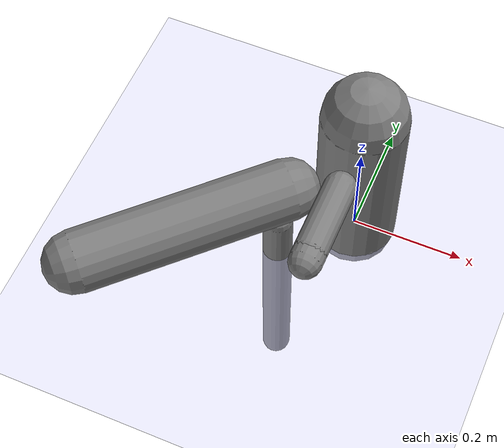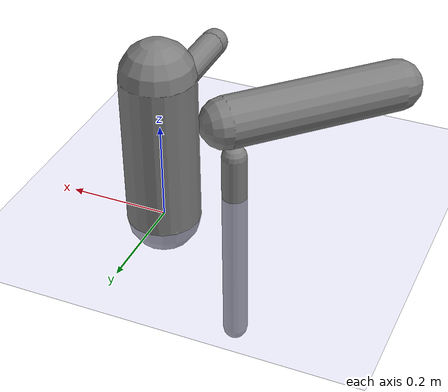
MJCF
<?xml version='1.0' encoding='UTF-8'?>
<mujoco model="robot_model">
  <worldbody>
    <light name="light" pos="0 -3 10" dir="0 0.5 -1" diffuse=".8 .8 .8" specular="0.1 0.1 0.1"/>
    <geom name="floor" type="plane" size="10.0 10.0 0.1" pos="0 0 0" rgba="0.8 0.8 1 1" contype="2" conaffinity="1"/>
    <body name="limb0" pos="0 0 0">
      <geom name="limb0_geom" type="capsule" fromto="0 0 0 0 0 0.31080676714656147" size="0.07363139861993152" density="594.957624755026" contype="1" conaffinity="2"/>
      <site type="sphere" size="0.01" name="limb0_site0" pos="-0.09291088760951131 -0.09291088760951129 0.17893832194665135" quat="0.7071067811865476 0.4999999999999999 -0.5000000000000001 0.0"/>
      <site type="sphere" size="0.01" name="limb0_site1" pos="-1.9342371547152392e-17 -0.10529496646499385 0.2541407230733447" quat="0.7071067811865476 0.7071067811865475 -1.2989340843532398e-16 0.0"/>
      <site type="sphere" size="0.01" name="limb0_site2" pos="-1.9344046511339248e-17 -0.10530408454534171 0.2552427865298218" quat="0.7071067811865476 0.7071067811865475 -1.2989340843532398e-16 0.0"/>
      <freejoint name="limb0_root"/>
      <body name="limb1" pos="-0.09291088760951131 -0.09291088760951129 0.17893832194665135" quat="0.7071067811865476 0.4999999999999999 -0.5000000000000001 0.0">
        <geom name="limb1_geom" type="capsule" fromto="0 0 0 0 0 0.3711195112383836" size="0.053764438729561694" density="695.0572133567601" contype="1" conaffinity="2"/>
        <site type="sphere" size="0.01" name="limb1_site0" pos="-0.05964851918874987 -0.059648519188749846 0.017912304026733158" quat="0.7071067811865476 0.4999999999999999 -0.5000000000000001 0.0"/>
        <body name="limb2" pos="-0.05964851918874987 -0.059648519188749846 0.017912304026733158" quat="0.7071067811865476 0.4999999999999999 -0.5000000000000001 0.0">
          <geom name="limb2_geom" type="capsule" fromto="0 0 0 0 0 0.45077315733160433" size="0.02659130608264014" density="1115.7827975094947" contype="1" conaffinity="2"/>
          <joint name="joint_limb1_limb2_0" type="hinge" axis="1 0 0" range="-88.31191170218361 88.31191170218361" damping="5.0"/>
        </body>
        <joint name="joint_limb0_limb1_0" type="hinge" axis="0 1 0" range="-113.6566083474294 113.6566083474294" damping="5.0"/>
      </body>
      <body name="limb3" pos="-1.9342371547152392e-17 -0.10529496646499385 0.2541407230733447" quat="0.7071067811865476 0.7071067811865475 -1.2989340843532398e-16 0.0">
        <geom name="limb3_geom" type="capsule" fromto="0 0 0 0 0 0.14705663010487965" size="0.02766356784506233" density="804.7781072521468" contype="1" conaffinity="2"/>
        <joint name="joint_limb0_limb3_0" type="hinge" axis="0 0 1" range="-27.51326948727836 27.51326948727836" damping="5.0"/>
      </body>
      <body name="limb4" pos="-1.9344046511339248e-17 -0.10530408454534171 0.2552427865298218" quat="0.7071067811865476 0.7071067811865475 -1.2989340843532398e-16 0.0">
        <geom name="limb4_geom" type="capsule" fromto="0 0 0 0 0 0.12696948819370785" size="0.027672685925410185" density="1018.6116784330146" contype="1" conaffinity="2"/>
        <joint name="joint_limb0_limb4_0" type="hinge" axis="0 1 0" range="-49.40763601682844 49.40763601682844" damping="5.0"/>
      </body>
    </body>
  </worldbody>
  <actuator>
    <position name="position_actuator_joint_limb0_limb1_0" joint="joint_limb0_limb1_0" gear="1.081511317933534" inheritrange="1" forcerange="-20.000595824005522 20.000595824005522" forcelimited="true" kp="100.0"/>
    <position name="position_actuator_joint_limb1_limb2_0" joint="joint_limb1_limb2_0" gear="1.6736889457361923" inheritrange="1" forcerange="-6.0258601534112195 6.0258601534112195" forcelimited="true" kp="100.0"/>
    <position name="position_actuator_joint_limb0_limb3_0" joint="joint_limb0_limb3_0" gear="1.326567493689957" inheritrange="1" forcerange="-1.7794749187366463 1.7794749187366463" forcelimited="true" kp="100.0"/>
    <position name="position_actuator_joint_limb0_limb4_0" joint="joint_limb0_limb4_0" gear="0.9156813341554366" inheritrange="1" forcerange="-2.0078028957054825 2.0078028957054825" forcelimited="true" kp="100.0"/>
  </actuator>
  <contact>
    <pair geom1="limb0_geom" geom2="limb1_geom"/>
    <pair geom1="limb1_geom" geom2="limb2_geom"/>
    <pair geom1="limb0_geom" geom2="limb3_geom"/>
    <pair geom1="limb0_geom" geom2="limb4_geom"/>
  </contact>
</mujoco>
